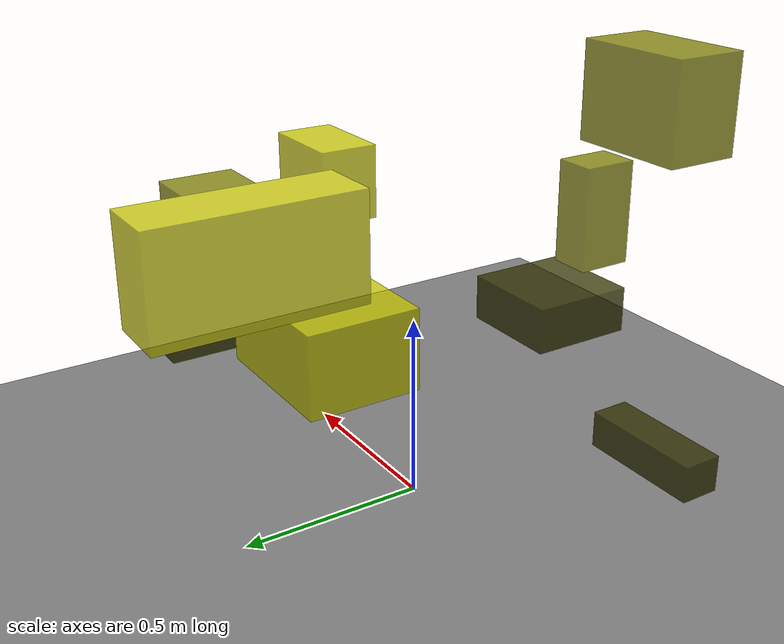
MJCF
<?xml version="1.0"?>
<mujoco model="obstacle_scene">
  <compiler angle="radian" coordinate="local"/>
  <option timestep="0.001" gravity="0 0 -9.81"/>

  <asset>
    <material name="obstacle_mat" rgba="0.8 0.8 0.0 0.8"/>
    <material name="ground_mat" rgba="0.5 0.5 0.5 1"/>
  </asset>

  <worldbody>
    <!-- Ground plane -->
    <geom name="ground" type="plane" size="3 3 0.1" material="ground_mat"/>

    <!-- Obstacles -->
    <body name="obstacle_0" pos="0.453228 0.448480 0.472491">
      <geom name="obs_0" type="box" size="0.165646 0.094101 0.068053" rgba="0.2 0.2 0.0 0.8"/>
    </body>
    <body name="obstacle_1" pos="-0.246539 -0.363998 0.799404">
      <geom name="obs_1" type="box" size="0.052336 0.068900 0.130071" rgba="0.5 0.5 0.0 0.8"/>
    </body>
    <body name="obstacle_2" pos="0.027855 0.245386 0.513545">
      <geom name="obs_2" type="box" size="0.200860 0.148607 0.108098" rgba="0.8 0.8 0.0 0.8"/>
    </body>
    <body name="obstacle_3" pos="0.849391 -0.204884 0.623975">
      <geom name="obs_3" type="box" size="0.052826 0.100640 0.120836" rgba="0.2 0.2 0.0 0.8"/>
    </body>
    <body name="obstacle_4" pos="-0.239429 -0.558532 1.055972">
      <geom name="obs_4" type="box" size="0.163605 0.100128 0.129348" rgba="0.5 0.5 0.0 0.8"/>
    </body>
    <body name="obstacle_5" pos="0.438924 0.001695 0.777997">
      <geom name="obs_5" type="box" size="0.127506 0.080261 0.102945" rgba="0.8 0.8 0.0 0.8"/>
    </body>
    <body name="obstacle_6" pos="0.439159 -0.818474 0.202555">
      <geom name="obs_6" type="box" size="0.171373 0.169367 0.075333" rgba="0.2 0.2 0.0 0.8"/>
    </body>
    <body name="obstacle_7" pos="-0.002961 0.490568 0.845305">
      <geom name="obs_7" type="box" size="0.179146 0.089515 0.078299" rgba="0.5 0.5 0.0 0.8"/>
    </body>
    <body name="obstacle_8" pos="-0.593163 0.719069 1.011595">
      <geom name="obs_8" type="box" size="0.064882 0.201956 0.105502" rgba="0.8 0.8 0.0 0.8"/>
    </body>
    <body name="obstacle_9" pos="-0.447103 -0.435516 0.203248">
      <geom name="obs_9" type="box" size="0.166675 0.052818 0.048700" rgba="0.2 0.2 0.0 0.8"/>
    </body>
  </worldbody>
</mujoco>
